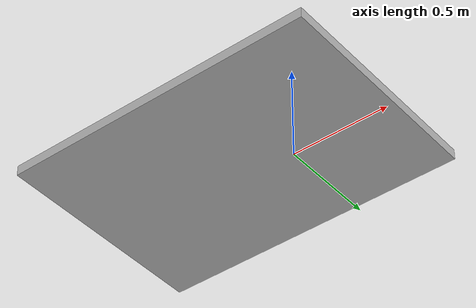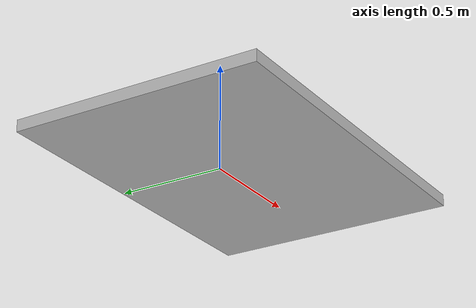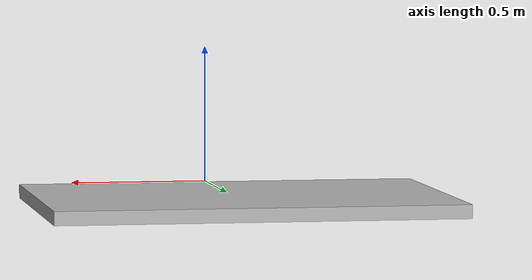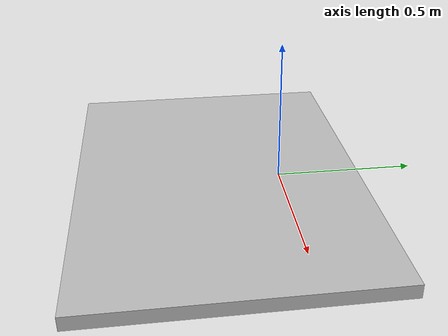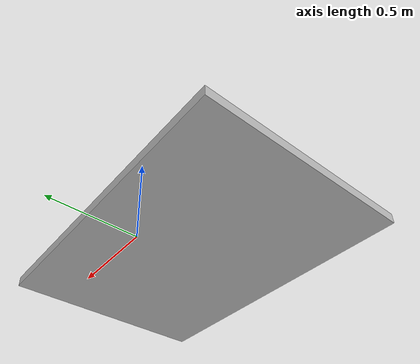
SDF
<?xml version="1.0" ?>
<sdf version="1.6">

    <!-- Import the trolley model -->
  <model name="trolley_base">
    <link name="link">
      <inertial>
        <mass>10</mass>
        <inertia>
            <ixy>0</ixy>
            <ixz>0</ixz>
            <iyz>0</iyz>
            <ixx>0.05288</ixx>
            <iyy>0.05288</iyy>
            <izz>0.09132</izz>
          </inertia>
      </inertial>
      <collision name="collision">
        <geometry>
          <mesh>
            <uri>model://trolley_base/meshes/trolley_base.dae</uri>
          </mesh>
        </geometry>
      </collision>
      <visual name="visual">
	    <geometry>
          <mesh>
            <uri>model://trolley_base/meshes/trolley_base.dae</uri>
            <scale>1 1 1</scale>
          </mesh>
        </geometry>
      <meta> <layer> 1 </layer></meta>
     </visual>
    </link>
  </model>

</sdf>
